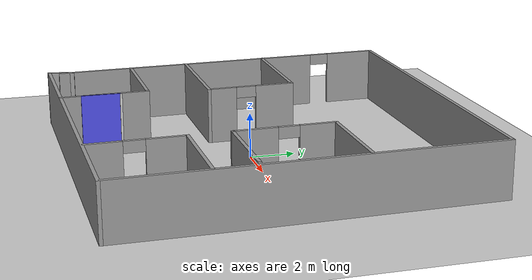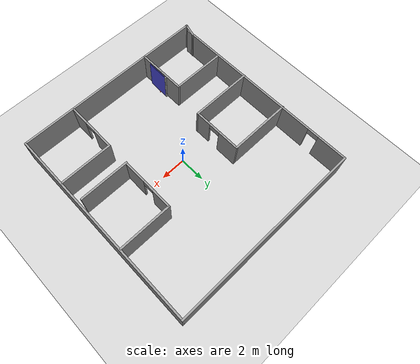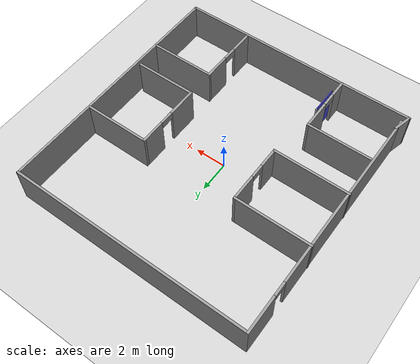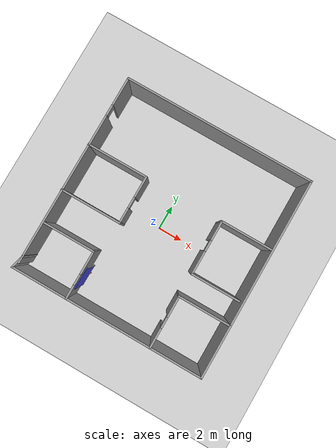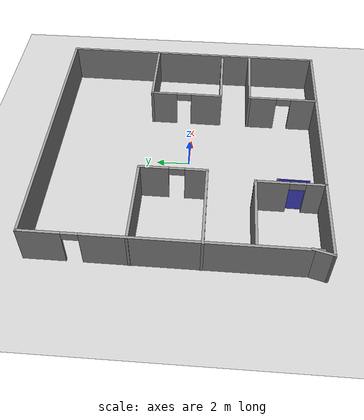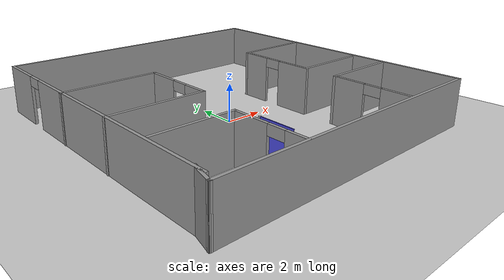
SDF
<sdf version="1.7">
 <world name="default">
  <model name="ground_plane">
   <static>1</static>
   <link name="link">
    <collision name="collision">
     <geometry><plane><normal>0 0 1</normal><size>100 100</size></plane></geometry>
     <surface><friction><ode><mu>100</mu><mu2>50</mu2></ode></friction></surface>
    </collision>
    <visual name="visual">
     <cast_shadows>0</cast_shadows>
     <geometry><plane><normal>0 0 1</normal><size>100 100</size></plane></geometry>
     <material>
      <script><uri>file://media/materials/scripts/gazebo.material</uri><name>Gazebo/Grey</name></script>
     </material>
    </visual>
   </link>
  </model>
  <model name="jampworld2">
   <pose>0.09733 0.3155 -1e-06 0.006456 -0 0</pose>
   <link name="Wall_0">
    <pose>-7.54157 0.258428 0 0 -0 1.5708</pose>
    <visual name="Wall_0_Visual_0">
     <pose>-1.63923 0 1.25 0 -0 0</pose>
     <geometry><box><size>12.4715 0.15 2.5</size></box></geometry>
     <material>
      <script><uri>file://media/materials/scripts/gazebo.material</uri><name>Gazebo/Grey</name></script>
      <ambient>1 1 1 1</ambient>
     </material>
     <meta><layer>0</layer></meta>
    </visual>
    <collision name="Wall_0_Collision_0">
     <geometry><box><size>12.4715 0.15 2.5</size></box></geometry>
     <pose>-1.63923 0 1.25 0 -0 0</pose>
    </collision>
    <visual name="Wall_0_Visual_1">
     <pose>6.68577 0 1.25 0 -0 0</pose>
     <geometry><box><size>2.37845 0.15 2.5</size></box></geometry>
     <material>
      <script><uri>file://media/materials/scripts/gazebo.material</uri><name>Gazebo/Grey</name></script>
      <ambient>1 1 1 1</ambient>
     </material>
     <meta><layer>0</layer></meta>
    </visual>
    <collision name="Wall_0_Collision_1">
     <geometry><box><size>2.37845 0.15 2.5</size></box></geometry>
     <pose>6.68577 0 1.25 0 -0 0</pose>
    </collision>
    <visual name="Wall_0_Visual_2">
     <pose>5.04655 0 2.25 0 -0 0</pose>
     <geometry><box><size>0.9 0.15 0.5</size></box></geometry>
     <material>
      <script><uri>file://media/materials/scripts/gazebo.material</uri><name>Gazebo/Grey</name></script>
      <ambient>1 1 1 1</ambient>
     </material>
     <meta><layer>0</layer></meta>
    </visual>
    <collision name="Wall_0_Collision_2">
     <geometry><box><size>0.9 0.15 0.5</size></box></geometry>
     <pose>5.04655 0 2.25 0 -0 0</pose>
    </collision>
   </link>
   <link name="Wall_1">
    <collision name="Wall_1_Collision">
     <geometry><box><size>15.5 0.15 2.5</size></box></geometry>
     <pose>0 0 1.25 0 -0 0</pose>
    </collision>
    <visual name="Wall_1_Visual">
     <pose>0 0 1.25 0 -0 0</pose>
     <geometry><box><size>15.5 0.15 2.5</size></box></geometry>
     <material>
      <script><uri>file://media/materials/scripts/gazebo.material</uri><name>Gazebo/Grey</name></script>
      <ambient>1 1 1 1</ambient>
     </material>
     <meta><layer>0</layer></meta>
    </visual>
    <pose>0.133427 8.05843 0 0 -0 0</pose>
   </link>
   <link name="Wall_10">
    <collision name="Wall_10_Collision">
     <geometry><box><size>4.25 0.15 2.5</size></box></geometry>
     <pose>0 0 1.25 0 -0 0</pose>
    </collision>
    <visual name="Wall_10_Visual">
     <pose>0 0 1.25 0 -0 0</pose>
     <geometry><box><size>4.25 0.15 2.5</size></box></geometry>
     <material>
      <script><uri>file://media/materials/scripts/gazebo.material</uri><name>Gazebo/Grey</name></script>
      <ambient>1 1 1 1</ambient>
     </material>
     <meta><layer>0</layer></meta>
    </visual>
    <pose>5.67359 2.30713 0 0 -0 3.14159</pose>
   </link>
   <link name="Wall_11">
    <pose>3.62359 0.132134 0 0 -0 -1.5708</pose>
    <visual name="Wall_11_Visual_0">
     <pose>-1.42802 0 1.25 0 -0 0</pose>
     <geometry><box><size>1.64396 0.15 2.5</size></box></geometry>
     <material>
      <script><uri>file://media/materials/scripts/gazebo.material</uri><name>Gazebo/Grey</name></script>
      <ambient>1 1 1 1</ambient>
     </material>
     <meta><layer>0</layer></meta>
    </visual>
    <collision name="Wall_11_Collision_0">
     <geometry><box><size>1.64396 0.15 2.5</size></box></geometry>
     <pose>-1.42802 0 1.25 0 -0 0</pose>
    </collision>
    <visual name="Wall_11_Visual_1">
     <pose>1.27198 0 1.25 0 -0 0</pose>
     <geometry><box><size>1.95605 0.15 2.5</size></box></geometry>
     <material>
      <script><uri>file://media/materials/scripts/gazebo.material</uri><name>Gazebo/Grey</name></script>
      <ambient>1 1 1 1</ambient>
     </material>
     <meta><layer>0</layer></meta>
    </visual>
    <collision name="Wall_11_Collision_1">
     <geometry><box><size>1.95605 0.15 2.5</size></box></geometry>
     <pose>1.27198 0 1.25 0 -0 0</pose>
    </collision>
    <visual name="Wall_11_Visual_2">
     <pose>-0.156045 0 2.25 0 -0 0</pose>
     <geometry><box><size>0.9 0.15 0.5</size></box></geometry>
     <material>
      <script><uri>file://media/materials/scripts/gazebo.material</uri><name>Gazebo/Grey</name></script>
      <ambient>1 1 1 1</ambient>
     </material>
     <meta><layer>0</layer></meta>
    </visual>
    <collision name="Wall_11_Collision_2">
     <geometry><box><size>0.9 0.15 0.5</size></box></geometry>
     <pose>-0.156045 0 2.25 0 -0 0</pose>
    </collision>
   </link>
   <link name="Wall_12">
    <collision name="Wall_12_Collision">
     <geometry><box><size>4 0.15 2.5</size></box></geometry>
     <pose>0 0 1.25 0 -0 0</pose>
    </collision>
    <visual name="Wall_12_Visual">
     <pose>0 0 1.25 0 -0 0</pose>
     <geometry><box><size>4 0.15 2.5</size></box></geometry>
     <material>
      <script><uri>file://media/materials/scripts/gazebo.material</uri><name>Gazebo/Grey</name></script>
      <ambient>1 1 1 1</ambient>
     </material>
     <meta><layer>0</layer></meta>
    </visual>
    <pose>5.54859 -2.04287 0 0 -0 0</pose>
   </link>
   <link name="Wall_14">
    <collision name="Wall_14_Collision">
     <geometry><box><size>4.25 0.15 2.5</size></box></geometry>
     <pose>0 0 1.25 0 -0 0</pose>
    </collision>
    <visual name="Wall_14_Visual">
     <pose>0 0 1.25 0 -0 0</pose>
     <geometry><box><size>4.25 0.15 2.5</size></box></geometry>
     <material>
      <script><uri>file://media/materials/scripts/gazebo.material</uri><name>Gazebo/Grey</name></script>
      <ambient>1 1 1 1</ambient>
     </material>
     <meta><layer>0</layer></meta>
    </visual>
    <pose>-5.33799 -4.178 0 0 -0 0</pose>
   </link>
   <link name="Wall_15">
    <pose>-3.28799 -6.10299 0 0 -0 -1.5708</pose>
    <visual name="Wall_15_Visual_0">
     <pose>-1.02507 0 1.25 0 -0 0</pose>
     <geometry><box><size>1.94986 0.15 2.5</size></box></geometry>
     <material>
      <script><uri>file://media/materials/scripts/gazebo.material</uri><name>Gazebo/Grey</name></script>
      <ambient>1 1 1 1</ambient>
     </material>
     <meta><layer>0</layer></meta>
    </visual>
    <collision name="Wall_15_Collision_0">
     <geometry><box><size>1.94986 0.15 2.5</size></box></geometry>
     <pose>-1.02507 0 1.25 0 -0 0</pose>
    </collision>
    <visual name="Wall_15_Visual_1">
     <pose>1.42493 0 1.25 0 -0 0</pose>
     <geometry><box><size>1.15014 0.15 2.5</size></box></geometry>
     <material>
      <script><uri>file://media/materials/scripts/gazebo.material</uri><name>Gazebo/Grey</name></script>
      <ambient>1 1 1 1</ambient>
     </material>
     <meta><layer>0</layer></meta>
    </visual>
    <collision name="Wall_15_Collision_1">
     <geometry><box><size>1.15014 0.15 2.5</size></box></geometry>
     <pose>1.42493 0 1.25 0 -0 0</pose>
    </collision>
    <visual name="Wall_15_Visual_2">
     <pose>0.399857 0 2.25 0 -0 0</pose>
     <geometry><box><size>0.9 0.15 0.5</size></box></geometry>
     <material>
      <script><uri>file://media/materials/scripts/gazebo.material</uri><name>Gazebo/Grey</name></script>
      <ambient>1 1 1 1</ambient>
     </material>
     <meta><layer>0</layer></meta>
    </visual>
    <collision name="Wall_15_Collision_2">
     <geometry><box><size>0.9 0.15 0.5</size></box></geometry>
     <pose>0.399857 0 2.25 0 -0 0</pose>
    </collision>
   </link>
   <link name="Wall_17">
    <collision name="Wall_17_Collision">
     <geometry><box><size>4.25 0.15 2.5</size></box></geometry>
     <pose>0 0 1.25 0 -0 0</pose>
    </collision>
    <visual name="Wall_17_Visual">
     <pose>0 0 1.25 0 -0 0</pose>
     <geometry><box><size>4.25 0.15 2.5</size></box></geometry>
     <material>
      <script><uri>file://media/materials/scripts/gazebo.material</uri><name>Gazebo/Grey</name></script>
      <ambient>1 1 1 1</ambient>
     </material>
     <meta><layer>0</layer></meta>
    </visual>
    <pose>5.67359 -3.87209 0 0 -0 3.14159</pose>
   </link>
   <link name="Wall_18">
    <pose>3.62359 -5.92209 0 0 -0 -1.5708</pose>
    <visual name="Wall_18_Visual_0">
     <pose>-1.24184 0 1.25 0 -0 0</pose>
     <geometry><box><size>1.76632 0.15 2.5</size></box></geometry>
     <material>
      <script><uri>file://media/materials/scripts/gazebo.material</uri><name>Gazebo/Grey</name></script>
      <ambient>1 1 1 1</ambient>
     </material>
     <meta><layer>0</layer></meta>
    </visual>
    <collision name="Wall_18_Collision_0">
     <geometry><box><size>1.76632 0.15 2.5</size></box></geometry>
     <pose>-1.24184 0 1.25 0 -0 0</pose>
    </collision>
    <visual name="Wall_18_Visual_1">
     <pose>1.33316 0 1.25 0 -0 0</pose>
     <geometry><box><size>1.58368 0.15 2.5</size></box></geometry>
     <material>
      <script><uri>file://media/materials/scripts/gazebo.material</uri><name>Gazebo/Grey</name></script>
      <ambient>1 1 1 1</ambient>
     </material>
     <meta><layer>0</layer></meta>
    </visual>
    <collision name="Wall_18_Collision_1">
     <geometry><box><size>1.58368 0.15 2.5</size></box></geometry>
     <pose>1.33316 0 1.25 0 -0 0</pose>
    </collision>
    <visual name="Wall_18_Visual_2">
     <pose>0.091316 0 2.25 0 -0 0</pose>
     <geometry><box><size>0.9 0.15 0.5</size></box></geometry>
     <material>
      <script><uri>file://media/materials/scripts/gazebo.material</uri><name>Gazebo/Grey</name></script>
      <ambient>1 1 1 1</ambient>
     </material>
     <meta><layer>0</layer></meta>
    </visual>
    <collision name="Wall_18_Collision_2">
     <geometry><box><size>0.9 0.15 0.5</size></box></geometry>
     <pose>0.091316 0 2.25 0 -0 0</pose>
    </collision>
   </link>
   <link name="Wall_2">
    <collision name="Wall_2_Collision">
     <geometry><box><size>16.25 0.15 2.5</size></box></geometry>
     <pose>0 0 1.25 0 -0 0</pose>
    </collision>
    <visual name="Wall_2_Visual">
     <pose>0 0 1.25 0 -0 0</pose>
     <geometry><box><size>16.25 0.15 2.5</size></box></geometry>
     <material>
      <script><uri>file://media/materials/scripts/gazebo.material</uri><name>Gazebo/Grey</name></script>
      <ambient>1 1 1 1</ambient>
     </material>
     <meta><layer>0</layer></meta>
    </visual>
    <pose>7.80843 0.008428 0 0 -0 -1.5708</pose>
   </link>
   <link name="Wall_3">
    <collision name="Wall_3_Collision">
     <geometry><box><size>15.75 0.15 2.5</size></box></geometry>
     <pose>0 0 1.25 0 -0 0</pose>
    </collision>
    <visual name="Wall_3_Visual">
     <pose>0 0 1.25 0 -0 0</pose>
     <geometry><box><size>15.75 0.15 2.5</size></box></geometry>
     <material>
      <script><uri>file://media/materials/scripts/gazebo.material</uri><name>Gazebo/Grey</name></script>
      <ambient>1 1 1 1</ambient>
     </material>
     <meta><layer>0</layer></meta>
    </visual>
    <pose>0.008427 -8.04157 0 0 -0 3.14159</pose>
   </link>
   <link name="Wall_4">
    <collision name="Wall_4_Collision">
     <geometry><box><size>1.25 0.15 2.5</size></box></geometry>
     <pose>0 0 1.25 0 -0 0</pose>
    </collision>
    <visual name="Wall_4_Visual">
     <pose>0 0 1.25 0 -0 0</pose>
     <geometry><box><size>1.25 0.15 2.5</size></box></geometry>
     <material>
      <script><uri>file://media/materials/scripts/gazebo.material</uri><name>Gazebo/Grey</name></script>
      <ambient>1 1 1 1</ambient>
     </material>
     <meta><layer>0</layer></meta>
    </visual>
    <pose>-7.64922 -7.51031 0 0 -0 1.309</pose>
   </link>
   <link name="Wall_6">
    <collision name="Wall_6_Collision">
     <geometry><box><size>5 0.15 2.5</size></box></geometry>
     <pose>0 0 1.25 0 -0 0</pose>
    </collision>
    <visual name="Wall_6_Visual">
     <pose>0 0 1.25 0 -0 0</pose>
     <geometry><box><size>5 0.15 2.5</size></box></geometry>
     <material>
      <script><uri>file://media/materials/scripts/gazebo.material</uri><name>Gazebo/Grey</name></script>
      <ambient>1 1 1 1</ambient>
     </material>
     <meta><layer>0</layer></meta>
    </visual>
    <pose>-5.14653 2.36831 0 0 -0 0</pose>
   </link>
   <link name="Wall_7">
    <pose>-2.72153 0.443314 0 0 -0 -1.5708</pose>
    <visual name="Wall_7_Visual_0">
     <pose>-1.11684 0 1.25 0 -0 0</pose>
     <geometry><box><size>1.76632 0.15 2.5</size></box></geometry>
     <material>
      <script><uri>file://media/materials/scripts/gazebo.material</uri><name>Gazebo/Grey</name></script>
      <ambient>1 1 1 1</ambient>
     </material>
     <meta><layer>0</layer></meta>
    </visual>
    <collision name="Wall_7_Collision_0">
     <geometry><box><size>1.76632 0.15 2.5</size></box></geometry>
     <pose>-1.11684 0 1.25 0 -0 0</pose>
    </collision>
    <visual name="Wall_7_Visual_1">
     <pose>1.33316 0 1.25 0 -0 0</pose>
     <geometry><box><size>1.33368 0.15 2.5</size></box></geometry>
     <material>
      <script><uri>file://media/materials/scripts/gazebo.material</uri><name>Gazebo/Grey</name></script>
      <ambient>1 1 1 1</ambient>
     </material>
     <meta><layer>0</layer></meta>
    </visual>
    <collision name="Wall_7_Collision_1">
     <geometry><box><size>1.33368 0.15 2.5</size></box></geometry>
     <pose>1.33316 0 1.25 0 -0 0</pose>
    </collision>
    <visual name="Wall_7_Visual_2">
     <pose>0.216316 0 2.25 0 -0 0</pose>
     <geometry><box><size>0.9 0.15 0.5</size></box></geometry>
     <material>
      <script><uri>file://media/materials/scripts/gazebo.material</uri><name>Gazebo/Grey</name></script>
      <ambient>1 1 1 1</ambient>
     </material>
     <meta><layer>0</layer></meta>
    </visual>
    <collision name="Wall_7_Collision_2">
     <geometry><box><size>0.9 0.15 0.5</size></box></geometry>
     <pose>0.216316 0 2.25 0 -0 0</pose>
    </collision>
   </link>
   <link name="Wall_8">
    <collision name="Wall_8_Collision">
     <geometry><box><size>5 0.15 2.5</size></box></geometry>
     <pose>0 0 1.25 0 -0 0</pose>
    </collision>
    <visual name="Wall_8_Visual">
     <pose>0 0 1.25 0 -0 0</pose>
     <geometry><box><size>5 0.15 2.5</size></box></geometry>
     <material>
      <script><uri>file://media/materials/scripts/gazebo.material</uri><name>Gazebo/Grey</name></script>
      <ambient>1 1 1 1</ambient>
     </material>
     <meta><layer>0</layer></meta>
    </visual>
    <pose>-5.14653 -1.48169 0 0 -0 3.14159</pose>
   </link>
   <static>1</static>
  </model>
  <model name="door_2">
   <link name="door_frame">
    <pose>0.883124 0.004995 1.25 0 -0 0</pose>
    <kinematic>1</kinematic>
    <inertial>
     <inertia><ixx>1</ixx><ixy>0</ixy><ixz>0</ixz><iyy>1</iyy><iyz>0</iyz><izz>1</izz></inertia>
     <mass>1</mass>
    </inertial>
    <visual name="frame_visual">
     <geometry><box><size>0.1 0.1 2.5</size></box></geometry>
     <material>
      <ambient>0.7 0.7 0.7 1</ambient>
      <diffuse>0.8 0.8 0.8 1</diffuse>
      <shader type="pixel"/>
      <script><name>ModelPreview_9::door_frame::frame_visual_MATERIAL_</name><uri>__default__</uri></script>
     </material>
    </visual>
    <collision name="frame_collision">
     <geometry><box><size>0.1 1 2.5</size></box></geometry>
     <surface>
      <friction>
       <ode><mu>1</mu><mu2>1</mu2><fdir1>0 0 0</fdir1><slip1>0</slip1><slip2>0</slip2></ode>
       <torsional>
        <coefficient>1</coefficient>
        <patch_radius>0</patch_radius>
        <surface_radius>0</surface_radius>
        <use_patch_radius>1</use_patch_radius>
        <ode><slip>0</slip></ode>
       </torsional>
      </friction>
      <bounce><restitution_coefficient>0</restitution_coefficient><threshold>1e+06</threshold></bounce>
      <contact>
       <collide_without_contact>0</collide_without_contact>
       <collide_without_contact_bitmask>1</collide_without_contact_bitmask>
       <collide_bitmask>1</collide_bitmask>
       <ode>
        <soft_cfm>0</soft_cfm>
        <soft_erp>0.2</soft_erp>
        <kp>1e+13</kp>
        <kd>1</kd>
        <max_vel>0.01</max_vel>
        <min_depth>0</min_depth>
       </ode>
       <bullet>
        <split_impulse>1</split_impulse>
        <split_impulse_penetration_threshold>-0.01</split_impulse_penetration_threshold>
        <soft_cfm>0</soft_cfm>
        <soft_erp>0.2</soft_erp>
        <kp>1e+13</kp>
        <kd>1</kd>
       </bullet>
      </contact>
     </surface>
    </collision>
   </link>
   <link name="door">
    <kinematic>1</kinematic>
    <pose>0 0 1.25 0 -0 0</pose>
    <inertial>
     <inertia><ixx>1.83367</ixx><ixy>0</ixy><ixz>0</ixz><iyy>2.74098</iyy><iyz>0</iyz><izz>0.90878</izz></inertia>
     <mass>3.51924</mass>
    </inertial>
    <visual name="door_visual">
     <geometry><box><size>1.75963 0.05 2.5</size></box></geometry>
     <material>
      <ambient>0.2 0.2 0.8 1</ambient>
      <diffuse>0.3 0.3 0.9 1</diffuse>
      <shader type="pixel"/>
      <script><name>ModelPreview_9::door::door_visual_MATERIAL_</name><uri>__default__</uri></script>
     </material>
    </visual>
    <collision name="door_collision">
     <geometry><box><size>1.75963 0.05 2.5</size></box></geometry>
     <surface>
      <friction>
       <ode><mu>1</mu><mu2>1</mu2><fdir1>0 0 0</fdir1><slip1>0</slip1><slip2>0</slip2></ode>
       <torsional>
        <coefficient>1</coefficient>
        <patch_radius>0</patch_radius>
        <surface_radius>0</surface_radius>
        <use_patch_radius>1</use_patch_radius>
        <ode><slip>0</slip></ode>
       </torsional>
      </friction>
      <bounce><restitution_coefficient>0</restitution_coefficient><threshold>1e+06</threshold></bounce>
      <contact>
       <collide_without_contact>0</collide_without_contact>
       <collide_without_contact_bitmask>1</collide_without_contact_bitmask>
       <collide_bitmask>1</collide_bitmask>
       <ode>
        <soft_cfm>0</soft_cfm>
        <soft_erp>0.2</soft_erp>
        <kp>1e+13</kp>
        <kd>1</kd>
        <max_vel>0.01</max_vel>
        <min_depth>0</min_depth>
       </ode>
       <bullet>
        <split_impulse>1</split_impulse>
        <split_impulse_penetration_threshold>-0.01</split_impulse_penetration_threshold>
        <soft_cfm>0</soft_cfm>
        <soft_erp>0.2</soft_erp>
        <kp>1e+13</kp>
        <kd>1</kd>
       </bullet>
      </contact>
     </surface>
    </collision>
   </link>
   <joint name="door_joint" type="prismatic">
    <parent>door_frame</parent>
    <child>door</child>
    <axis>
     <xyz>1 0 0</xyz>
     <limit><lower>0</lower><upper>2.0</upper><effort>-1</effort><velocity>-1</velocity></limit>
     <dynamics>
      <spring_reference>0</spring_reference>
      <spring_stiffness>0</spring_stiffness>
      <damping>0</damping>
      <friction>0</friction>
     </dynamics>
    </axis>
    <physics>
     <ode><limit><cfm>0</cfm><erp>0.2</erp></limit><suspension><cfm>0</cfm><erp>0.2</erp></suspension></ode>
    </physics>
   </joint>
   <static>0</static>
   <plugin name="door_control_plugin" filename="libdoor_control_plugin.so">
    <door_joint>door_joint</door_joint>
    <speed>1.0</speed>
    <open_target>1.0</open_target>
    <close_target>0.0</close_target>
   </plugin>
   <pose>-3.00551 -5.98685 0 0 -0 1.55474</pose>
  </model>
  <model name="Lidar_1">
   <link name="link_1">
    <inertial>
     <mass>0.00014111</mass>
     <inertia><ixx>7e-08</ixx><ixy>0</ixy><ixz>0</ixz><iyy>7e-08</iyy><iyz>0</iyz><izz>6e-08</izz></inertia>
    </inertial>
    <visual name="visual">
     <geometry><box><size>0.048286 0.048861 0.059852</size></box></geometry>
     <material>
      <lighting>1</lighting>
      <script><uri>file://media/materials/scripts/gazebo.material</uri><name>Gazebo/Grey</name></script>
      <shader type="pixel"><normal_map>__default__</normal_map></shader>
      <ambient>1 0 0 1</ambient>
      <diffuse>0.7 0.7 0.7 1</diffuse>
      <specular>0.01 0.01 0.01 1</specular>
      <emissive>0 0 0 1</emissive>
     </material>
    </visual>
    <collision name="collision">
     <geometry><box><size>0.048286 0.048861 0.059852</size></box></geometry>
     <surface>
      <friction>
       <ode><mu>1</mu><mu2>1</mu2><fdir1>0 0 0</fdir1><slip1>0</slip1><slip2>0</slip2></ode>
       <torsional>
        <coefficient>1</coefficient>
        <patch_radius>0</patch_radius>
        <surface_radius>0</surface_radius>
        <use_patch_radius>1</use_patch_radius>
        <ode><slip>0</slip></ode>
       </torsional>
      </friction>
      <bounce><restitution_coefficient>0</restitution_coefficient><threshold>1e+06</threshold></bounce>
      <contact>
       <collide_without_contact>0</collide_without_contact>
       <collide_without_contact_bitmask>1</collide_without_contact_bitmask>
       <collide_bitmask>1</collide_bitmask>
       <ode>
        <soft_cfm>0</soft_cfm>
        <soft_erp>0.2</soft_erp>
        <kp>1e+13</kp>
        <kd>1</kd>
        <max_vel>0.01</max_vel>
        <min_depth>0</min_depth>
       </ode>
       <bullet>
        <split_impulse>1</split_impulse>
        <split_impulse_penetration_threshold>-0.01</split_impulse_penetration_threshold>
        <soft_cfm>0</soft_cfm>
        <soft_erp>0.2</soft_erp>
        <kp>1e+13</kp>
        <kd>1</kd>
       </bullet>
      </contact>
     </surface>
    </collision>
   </link>
   <static>0</static>
   <pose>-2.91467 -5.75533 0.024423 1.57072 -1.7e-05 0.00949</pose>
  </model>
 </world>
</sdf>
